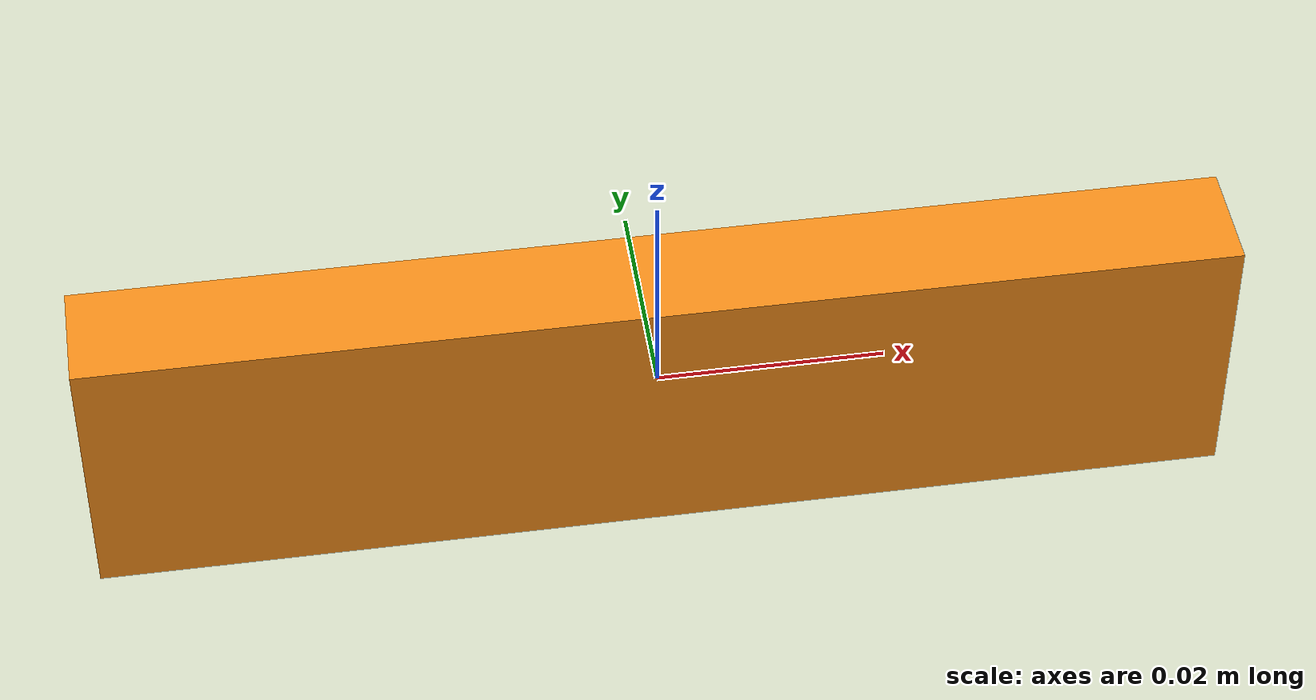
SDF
<?xml version="1.0" ?>
<sdf version='1.4'>
  <model name="stone">
      <static>0</static>
      <link name='link'>
	    <pose>0 0 0 1.57 0 0</pose>
      <inertial>
        <mass>0.0125</mass>
        <inertia>
          <ixx>7.552083333333335e-07</ixx>
          <ixy>0</ixy>
          <ixz>0</ixz>
          <iyy>1.0520833333333334e-05</iyy>
          <iyz>0</iyz>
          <izz>1.1067708333333336e-05</izz>
        </inertia>
      </inertial>
      <collision name='collision'>
        <geometry>
          <box><size>0.100 0.025 0.010</size></box>
        </geometry>
        <surface>
          <friction>
            <ode>
              <mu>30.0</mu>
              <mu2>30.0</mu2>
            </ode>
          </friction>
          <contact>
            <ode>
              <kp>100000</kp>
              <kd>1</kd>
              <max_vel>1.0</max_vel>
              <min_depth>0.001</min_depth>
            </ode>
          </contact>
        </surface>
      </collision>
      <visual name='visual'>
        <geometry>
          <box><size>0.100 0.025 0.010</size></box>
        </geometry>
        <material>
          <script>
            <uri>file://media/materials/scripts/gazebo.material</uri>
            <name>Gazebo/Orange</name>
          </script>
        </material>
      </visual>
      <velocity_decay>
        <linear>0.000000</linear>
        <angular>0.000000</angular>
      </velocity_decay>
      <self_collide>0</self_collide>
      <kinematic>0</kinematic>
      <gravity>1</gravity>
    </link>
  </model>
</sdf>
